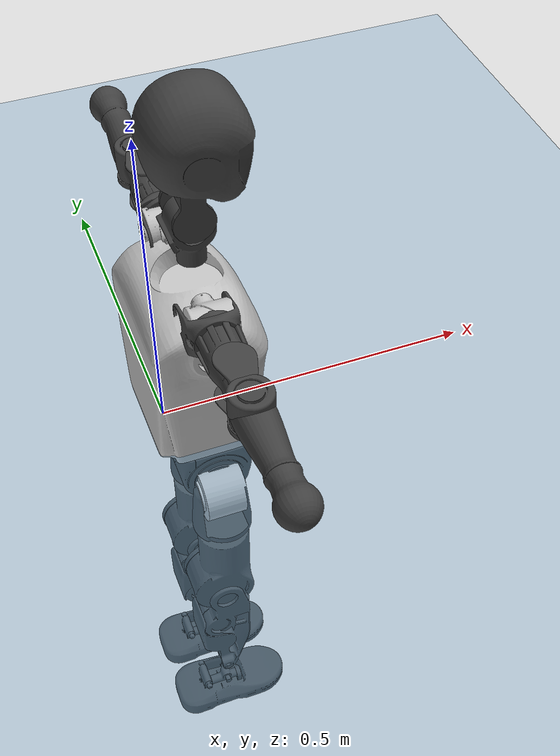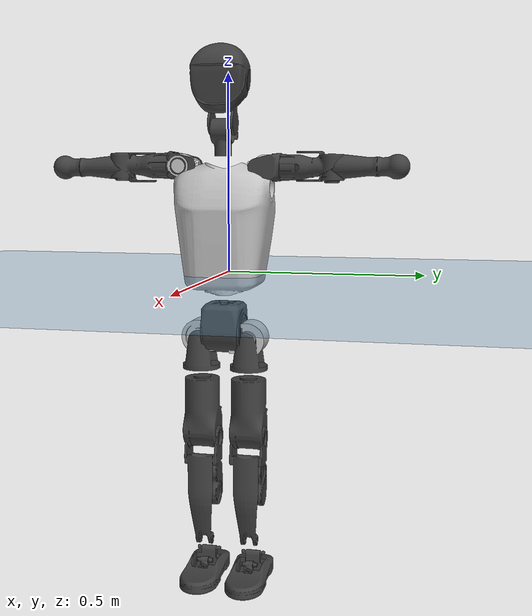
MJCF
<mujoco model="T1">
  <compiler angle="radian" assetdir="assets" balanceinertia="true" inertiafromgeom="false"/>

  <option timestep="0.005" density="1.2" viscosity="2e-05"/>

  <size nkey="1"/>

  <visual>
    <quality shadowsize="8192"/>
    <map shadowclip="0.5"/>
  </visual>

  <default>
    <default class="/">
      <joint armature="0.01" damping="0.01" frictionloss="0.1"/>
      <geom contype="0" conaffinity="0" group="1" solref="-1000 -80"/>
      <site size="0.01 0.005 0.005" group="5"/>
      <general forcelimited="true" biastype="affine" gainprm="25" biasprm="0 -25 -0.6"/>
      <default class="t1">
        <geom rgba="0.25 0.25 0.25 1"/>
        <default class="visual">
          <geom type="mesh" group="2"/>
        </default>
        <default class="collision">
          <geom group="3"/>
        </default>
        <default class="foot">
          <geom size="0.1115 0.05 0.015" type="box" condim="6" group="4" priority="1" solimp="0.015 1 0.015"/>
        </default>
        <default class="reward_collision_sphere">
          <geom group="5" rgba="1 0 0 1"/>
        </default>
      </default>
    </default>
  </default>

  <asset>
    <texture type="skybox" colorspace="auto" name="//unnamed_texture_0" builtin="gradient" rgb1="0.95 0.95 0.95" rgb2="0.95 0.95 0.95" width="100" height="600"/>
    <texture type="2d" colorspace="auto" name="texplane" builtin="checker" rgb1="0.345 0.575 0.748" rgb2="0.345 0.575 0.748" markrgb="1 1 1" width="512" height="512"/>
    <material name="MatPlane" class="/" texture="texplane" texuniform="true" texrepeat="2 2" specular="0.9"/>
    <mesh name="Trunk" class="/" file="Trunk.stl"/>
    <mesh name="H1" class="/" file="H1.stl"/>
    <mesh name="H2" class="/" file="H2.stl"/>
    <mesh name="AL1" class="/" file="AL1.stl"/>
    <mesh name="AL2" class="/" file="AL2.stl"/>
    <mesh name="AL3" class="/" file="AL3.stl"/>
    <mesh name="left_hand_link" class="/" file="left_hand_link.stl"/>
    <mesh name="AR1" class="/" file="AR1.stl"/>
    <mesh name="AR2" class="/" file="AR2.stl"/>
    <mesh name="AR3" class="/" file="AR3.stl"/>
    <mesh name="right_hand_link" class="/" file="right_hand_link.stl"/>
    <mesh name="Waist" class="/" file="Waist.stl"/>
    <mesh name="Hip_Pitch_Left" class="/" file="Hip_Pitch_Left.stl"/>
    <mesh name="Hip_Roll_Left" class="/" file="Hip_Roll_Left.stl"/>
    <mesh name="Hip_Yaw_Left" class="/" file="Hip_Yaw_Left.stl"/>
    <mesh name="Shank_Left" class="/" file="Shank_Left.stl"/>
    <mesh name="Ankle_Cross_Left" class="/" file="Ankle_Cross_Left.stl"/>
    <mesh name="left_foot_link" class="/" file="left_foot_link.stl"/>
    <mesh name="Hip_Pitch_Right" class="/" file="Hip_Pitch_Right.stl"/>
    <mesh name="Hip_Roll_Right" class="/" file="Hip_Roll_Right.stl"/>
    <mesh name="Hip_Yaw_Right" class="/" file="Hip_Yaw_Right.stl"/>
    <mesh name="Shank_Right" class="/" file="Shank_Right.stl"/>
    <mesh name="Ankle_Cross_Right" class="/" file="Ankle_Cross_Right.stl"/>
    <mesh name="right_foot_link" class="/" file="right_foot_link.stl"/>
  </asset>

  <worldbody>
    <geom name="floor" class="/" size="100 100 0.125" type="plane" group="0" material="MatPlane"/>
    <light name="toplight_shadow" class="/" pos="0 0 5" dir="0.0990148 0.0990148 -0.990148" type="directional" ambient="0.04 0.04 0.04" diffuse="0.55 0.55 0.55" specular="0.12 0.12 0.12"/>
    <light name="toplight_fill" class="/" pos="0 0 5" dir="0.0990148 0.0990148 -0.990148" type="directional" castshadow="false" ambient="0.04 0.04 0.04" diffuse="0.3 0.3 0.3" specular="0.08 0.08 0.08"/>
    <body name="trunk" childclass="t1" pos="-0.000388663 0.00246274 -0.00120054" quat="1 -0.000315095 -0.000128424 -0.000139211">
      <inertial pos="0.053944 -0.000270035 0.129722" quat="0.999959 -0.00130845 -0.00885748 -0.00104695" mass="9.92726" diaginertia="0.108345 0.00512362 0.143612"/>
      <joint name="//unnamed_joint_0" type="free" armature="0" damping="0" frictionloss="0"/>
      <geom name="//unnamed_geom_1" class="visual" rgba="0.76 0.76 0.76 1" mesh="Trunk"/>
      <geom name="//unnamed_geom_2" class="collision" size="0.0711401 0.0948534 0.14228" pos="0.0622886 0 0.146499" type="box"/>
      <geom name="//unnamed_geom_3" class="reward_collision_sphere" size="0.109081" pos="0.0622886 0 0.122082"/>
      <geom name="//unnamed_geom_4" class="reward_collision_sphere" size="0.014228" pos="0.0622886 0.0498641 0"/>
      <geom name="//unnamed_geom_5" class="reward_collision_sphere" size="0.014228" pos="0.0622886 -0.0498641 0"/>
      <geom name="//unnamed_geom_6" class="reward_collision_sphere" size="0.014228" pos="0.0622886 0.0627701 0.219748"/>
      <geom name="//unnamed_geom_7" class="reward_collision_sphere" size="0.014228" pos="0.0622886 -0.0627701 0.219748"/>
      <site name="imu" pos="-0.00116792 -0.0129633 -0.00916886" size="0.00948534"/>
      <camera name="track" pos="0 -1.17327 0" quat="0.707107 0.707107 0 0" mode="trackcom"/>
      <camera name="ego_camera" pos="0.126653 0 0.512746" quat="-0.5 -0.5 0.5 0.5"/>
      <body name="H1" pos="0.0651057 -0.00100353 0.294488" quat="0.999999 -0.000125465 0.000426422 0.00109356">
        <inertial pos="-0.000356606 -0.00407044 0.0718252" quat="0.770178 -0.00819272 -0.00138667 0.637774" mass="0.381365" diaginertia="0.000279228 1.53126e-05 0.000382326"/>
        <joint name="AAHead_yaw" pos="0 0 0" axis="0.011252 -0.00117861 0.999936" range="-1.53311 1.48619" armature="0.00911977" damping="0.00779815" frictionloss="0.0944358"/>
        <geom name="//unnamed_geom_8" class="visual" mesh="H1"/>
        <body name="H2" pos="-0.000694343 0.000720648 0.0811408" quat="0.999997 -6.5631e-05 -0.0009534 -0.00243384">
          <inertial pos="0.00596817 0.000180738 0.119241" quat="0.988388 0.106655 -0.0747959 -0.0782254" mass="0.539111" diaginertia="0.00244024 0.000128707 0.00485711"/>
          <joint name="Head_pitch" pos="0 0 0" axis="-0.00327914 -0.999986 -0.00415998" range="-1.17096 0.342849" armature="0.00957084" damping="0.0107738" frictionloss="0.0953779"/>
          <geom name="//unnamed_geom_9" class="visual" mesh="H2"/>
          <geom name="//unnamed_geom_10" class="collision" size="0.0758828" pos="0.0103814 0 0.134291"/>
          <geom name="//unnamed_geom_11" class="reward_collision_sphere" size="0.0853681" pos="0.0207629 0 0.122082"/>
        </body>
      </body>
      <body name="AL1" pos="0.060915 0.0623796 0.267668" quat="1 0.00032578 0.000584298 -0.000336196">
        <inertial pos="0.00138813 0.0257034 -0.000238837" quat="0.506841 0.485538 -0.500622 0.506698" mass="0.465281" diaginertia="0.00163967 9.08059e-05 0.000794886"/>
        <joint name="Left_Shoulder_Pitch" pos="0 0 0" axis="-0.00340385 0.999991 -0.00257939" range="-3.38243 1.20504" armature="0.0097213" damping="0.00256207" frictionloss="0.0877994"/>
        <geom name="//unnamed_geom_12" class="visual" rgba="0.76 0.76 0.76 1" mesh="AL1"/>
        <body name="AL2" pos="0.000929092 0.0274929 -7.36792e-06" quat="0.999999 -0.00138277 0.000450338 0.000574806">
          <inertial pos="-0.000684894 0.0230955 -2.89338e-05" quat="0.485923 0.510079 -0.491181 0.512288" mass="0.140888" diaginertia="0.000502364 2.43943e-05 0.000511329"/>
          <joint name="Left_Shoulder_Roll" pos="0 0 0" axis="-0.999976 0.00344243 0.00606759" range="-1.57709 1.69077" armature="0.00945294" damping="0.00117475" frictionloss="0.0852364"/>
          <geom name="//unnamed_geom_13" class="visual" mesh="AL2"/>
          <body name="AL3" pos="0.000335617 0.0337893 -0.000678657" quat="0.999999 0.000248687 0.00115258 0.00064216">
            <inertial pos="-0.00373975 0.0524635 0.000970545" quat="0.696521 0.717232 -0.00257591 -0.0207403" mass="0.818251" diaginertia="0.0141265 0.000779018 0.00160171"/>
            <joint name="Left_Elbow_Pitch" pos="0 0 0" axis="0.0057062 -0.999912 0.0120135" stiffness="0.00254269" range="-2.29283 2.1806" armature="0.00856706" damping="0.00950732" frictionloss="0.0736837"/>
            <geom name="//unnamed_geom_14" class="visual" mesh="AL3"/>
            <geom name="//unnamed_geom_15" class="collision" size="0.028456 0.0711401" pos="0 0.0293318 0" quat="0.707105 0.707108 0 0" type="cylinder"/>
            <geom name="//unnamed_geom_16" class="reward_collision_sphere" size="0.0341472"/>
            <body name="left_hand_link" pos="-0.000121141 0.0881101 0.00233668" quat="0.999998 -0.000642877 -0.00198832 -0.000288782">
              <inertial pos="-0.00269158 0.0634609 0.00140819" quat="0.707333 0.706769 0.0123938 -0.00190463" mass="0.272698" diaginertia="0.00926629 0.000549442 0.00059451"/>
              <joint name="Left_Elbow_Yaw" pos="0 0 0" axis="0.00291309 0.0104964 0.999941" stiffness="0.00772095" range="-2.46421 -0.0868551" armature="0.0102518" damping="0.0183771" frictionloss="0.0995907"/>
              <geom name="//unnamed_geom_17" class="visual" mesh="left_hand_link"/>
              <geom name="//unnamed_geom_18" class="collision" size="0.028456 0.0829968" pos="0 0.0762628 0" quat="0.707105 0.707108 0 0" type="cylinder"/>
              <geom name="//unnamed_geom_19" class="reward_collision_sphere" size="0.0474267"/>
              <geom name="//unnamed_geom_20" class="reward_collision_sphere" size="0.0331987" pos="0 0.0645301 0"/>
              <geom name="//unnamed_geom_21" class="reward_collision_sphere" size="0.0331987" pos="0 0.126127 0"/>
            </body>
          </body>
        </body>
      </body>
      <body name="AR1" pos="0.0567925 -0.0636596 0.270478" quat="1 -5.00692e-05 0.000430115 -6.6326e-05">
        <inertial pos="-0.00171863 -0.0240653 0.000212465" quat="0.495352 0.493755 -0.507818 0.502945" mass="0.455151" diaginertia="0.00163884 8.83246e-05 0.000787851"/>
        <joint name="Right_Shoulder_Pitch" pos="0 0 0" axis="0.0214034 -0.999722 0.00989476" range="-1.232 3.23931" armature="0.00837675" damping="0.0131639" frictionloss="0.113356"/>
        <geom name="//unnamed_geom_22" class="visual" rgba="0.76 0.76 0.76 1" mesh="AR1"/>
        <body name="AR2" pos="-0.00492885 -0.0243023 0.00224461" quat="1 0.000136402 2.6677e-06 -1.83506e-05">
          <inertial pos="0.00294707 -0.0230546 0.00303477" quat="0.52044 0.481271 -0.509787 0.487481" mass="0.124695" diaginertia="0.000467048 2.2655e-05 0.000451882"/>
          <joint name="Right_Shoulder_Roll" pos="0 0 0" axis="-0.999953 0.00704294 -0.00659488" stiffness="0.00793334" range="-1.75265 1.55167" armature="0.00834621" damping="0.0124601" frictionloss="0.0863147"/>
          <geom name="//unnamed_geom_23" class="visual" mesh="AR2"/>
          <body name="AR3" pos="0.00238246 -0.0331386 -0.00147997" quat="1 0.000213208 -0.000273996 -0.000247092">
            <inertial pos="0.000664501 -0.0514931 0.00111653" quat="0.70686 0.707311 0.000113607 0.00775371" mass="0.794934" diaginertia="0.0144324 0.000833293 0.0015808"/>
            <joint name="Right_Elbow_Pitch" pos="0 0 0" axis="0.00423369 0.999985 0.00345287" stiffness="0.0281607" range="-2.24214 2.31471" armature="0.00887107" damping="0" frictionloss="0.0987016"/>
            <geom name="//unnamed_geom_24" class="visual" mesh="AR3"/>
            <geom name="//unnamed_geom_25" class="collision" size="0.028456 0.0711401" pos="0 -0.0293318 0" quat="0.707105 0.707108 0 0" type="cylinder"/>
            <geom name="//unnamed_geom_26" class="reward_collision_sphere" size="0.0341472"/>
            <body name="right_hand_link" pos="0.000150101 -0.0870711 -0.00435275" quat="1 3.60899e-05 0.000162789 -0.000114541">
              <inertial pos="-0.00238767 -0.0646914 0.00495411" quat="0.706313 0.7079 0.000308827 -0.000162266" mass="0.294973" diaginertia="0.0100988 0.000548722 0.000581643"/>
              <joint name="Right_Elbow_Yaw" pos="0 0 0" axis="0.00123012 -0.00241434 0.999996" range="0.0395059 2.3901" armature="0.0084504" damping="0.00164385" frictionloss="0.0870661"/>
              <geom name="//unnamed_geom_27" class="visual" mesh="right_hand_link"/>
              <geom name="//unnamed_geom_28" class="collision" size="0.028456 0.0829968" pos="0 -0.0762628 0" quat="0.707105 0.707108 0 0" type="cylinder"/>
              <geom name="//unnamed_geom_29" class="reward_collision_sphere" size="0.0474267"/>
              <geom name="//unnamed_geom_30" class="reward_collision_sphere" size="0.0331987" pos="0 -0.0645301 0"/>
              <geom name="//unnamed_geom_31" class="reward_collision_sphere" size="0.0331987" pos="0 -0.126127 0"/>
            </body>
          </body>
        </body>
      </body>
      <body name="Waist" pos="0.0706656 0.00224591 -0.138303" quat="1 0.000294946 -0.000457244 -1.13371e-06">
        <inertial pos="0.00502495 0.00118992 0.0115327" quat="0.983795 1.88424e-05 -0.179281 0.00239316" mass="2.31389" diaginertia="0.00672207 0.000391223 0.013357"/>
        <joint name="Waist" pos="0 0 0" axis="5.56401e-05 0.000430622 1" range="-1.56771 1.56911" armature="0.0106801" damping="0" frictionloss="0.112475"/>
        <geom name="//unnamed_geom_32" class="visual" mesh="Waist"/>
        <body name="Hip_Pitch_Left" pos="0.00251911 0.0654566 -0.00181464" quat="1 -0.000808916 0.000167141 -7.22837e-05">
          <inertial pos="0.00171792 -0.0073097 -0.0215016" quat="0.976212 0.216241 0.0152979 0.00406136" mass="0.873828" diaginertia="0.00207494 9.42385e-05 0.00328807"/>
          <joint name="Left_Hip_Pitch" pos="0 0 0" axis="0.0139096 0.999871 -0.00801018" stiffness="0.0188397" range="-1.8518 1.61722" armature="0.00832402" damping="0.016551" frictionloss="0.104072"/>
          <geom name="//unnamed_geom_33" class="visual" rgba="0.76 0.76 0.76 1" mesh="Hip_Pitch_Left"/>
          <body name="Hip_Roll_Left" pos="-0.00293259 -0.00233645 -0.024195" quat="0.999997 0.00194448 -0.000994585 0.00137614">
            <inertial pos="0.00437935 0.00167413 -0.0631109" quat="0.704888 -0.0140605 0.0162213 0.708994" mass="0.343216" diaginertia="0.00222506 0.000111811 0.00139782"/>
            <joint name="Left_Hip_Roll" pos="0 0 0" axis="-0.999668 0.0163186 0.0199326" range="-1.54927 0.135892" armature="0.00818921" damping="0.0207701" frictionloss="0.0878006"/>
            <geom name="//unnamed_geom_34" class="visual" mesh="Hip_Roll_Left"/>
            <geom name="//unnamed_geom_35" class="reward_collision_sphere" size="0.0521694"/>
            <body name="Hip_Yaw_Left" pos="-0.0056205 -0.00164267 -0.102459" quat="0.999998 -0.00108343 -0.000910159 -0.0011089">
              <inertial pos="-0.00475323 -0.00312302 -0.109943" quat="0.703238 -0.0403463 -0.0350789 0.708941" mass="1.76748" diaginertia="0.0302345 0.00169524 0.00670174"/>
              <joint name="Left_Hip_Yaw" pos="0 0 0" axis="-0.00538242 0.000359244 -0.999985" range="-0.959302 1.08223" armature="0.0104466" damping="0" frictionloss="0.100949"/>
              <geom name="//unnamed_geom_36" class="visual" mesh="Hip_Yaw_Left"/>
              <geom name="//unnamed_geom_37" class="collision" size="0.0474267 0.0758828" type="cylinder"/>
              <body name="Shank_Left" pos="-0.0122184 -0.00138963 -0.159589" quat="1 0.000471922 1.75773e-05 -0.000361973">
                <inertial pos="-0.00812667 0.0026935 -0.150453" quat="0.996688 0.000582224 -0.0234471 0.0778658" mass="1.49719" diaginertia="0.0419107 0.00248261 0.00536055"/>
                <joint name="Left_Knee_Pitch" pos="0 0 0" axis="0.00272777 0.999982 -0.00541764" range="0.0130462 2.3727" armature="0.00931964" damping="0.00906624" frictionloss="0.103956"/>
                <geom name="//unnamed_geom_38" class="visual" mesh="Shank_Left"/>
                <geom name="//unnamed_geom_39" class="collision" size="0.0474267 0.0711401" pos="0 0 -0.146499" type="cylinder"/>
                <geom name="//unnamed_geom_40" class="reward_collision_sphere" size="0.0616547"/>
                <body name="Ankle_Cross_Left" pos="0.000846601 0.000932434 -0.345849" quat="1 0.000163973 -0.000368818 0.000211251">
                  <inertial pos="-0.00463399 0.00236287 -0.0106779" quat="0.443684 0.551017 0.550971 0.442669" mass="0.0583186" diaginertia="3.4596e-05 1.69744e-06 3.00095e-05"/>
                  <joint name="Left_Ankle_Pitch" pos="0 0 0" axis="3.62636e-05 0.999972 -0.00743767" range="-0.918045 0.394425" armature="0.0099267" damping="0.0130509" frictionloss="0.0982234"/>
                  <geom name="//unnamed_geom_41" class="visual" mesh="Ankle_Cross_Left"/>
                  <body name="left_foot_link" pos="0.000648596 0.00104757 -0.0148685" quat="0.999999 0.000577378 -0.000250603 -0.000910453">
                    <inertial pos="0.00177659 -0.00158556 -0.0110182" quat="4.46535e-06 0.620695 1.37257e-05 0.784052" mass="0.627705" diaginertia="0.00312875 0.000172367 0.00621283"/>
                    <joint name="Left_Ankle_Roll" pos="0 0 0" axis="-0.999998 0.00144692 -0.00109177" stiffness="0.00559635" range="-0.486959 0.365647" armature="0.00745856" damping="0.00965414" frictionloss="0.104944"/>
                    <geom name="//unnamed_geom_42" class="visual" mesh="left_foot_link"/>
                    <geom name="left_foot" class="foot" size="0.0947858 0.0527915 0.013127" pos="0.0103814 0 -0.0183124"/>
                    <geom name="//unnamed_geom_44" class="reward_collision_sphere" size="0.0493238" pos="0.0103814 0 -0.0183124"/>
                    <geom name="//unnamed_geom_45" class="reward_collision_sphere" size="0.028456" pos="0.0986236 -0.0134926 -0.0183124"/>
                    <geom name="//unnamed_geom_46" class="reward_collision_sphere" size="0.028456" pos="-0.07267 -0.0134926 -0.0183124"/>
                    <site name="left_foot" class="foot" pos="0.0103814 0 -0.0183124" size="0.00948534"/>
                  </body>
                </body>
              </body>
            </body>
          </body>
        </body>
        <body name="Hip_Pitch_Right" pos="-0.00213483 -0.0606916 0.00157393" quat="0.999999 4.05718e-05 -0.00104564 -0.000964738">
          <inertial pos="0.00323138 0.0064351 -0.0220248" quat="0.972911 -0.230608 0.0147275 -0.0069367" mass="0.837761" diaginertia="0.0021567 0.000100916 0.00334076"/>
          <joint name="Right_Hip_Pitch" pos="0 0 0" axis="-0.00596717 -0.999908 -0.0121907" range="-1.51938 1.78652" armature="0.00687739" damping="0.0118099" frictionloss="0.0891689"/>
          <geom name="//unnamed_geom_47" class="visual" rgba="0.76 0.76 0.76 1" mesh="Hip_Pitch_Right"/>
          <body name="Hip_Roll_Right" pos="0.00159533 -0.00035813 -0.0277781" quat="0.999999 0.000397261 0.000335102 0.00118109">
            <inertial pos="0.00130747 0.00376835 -0.0645554" quat="0.699935 -0.00299832 -0.0165615 0.714008" mass="0.361501" diaginertia="0.00230419 0.000113186 0.0014977"/>
            <joint name="Right_Hip_Roll" pos="0 0 0" axis="-0.999798 0.00433993 -0.0196471" range="-0.23335 1.5747" armature="0.00962279" damping="0.0195388" frictionloss="0.101158"/>
            <geom name="//unnamed_geom_48" class="visual" mesh="Hip_Roll_Right"/>
            <geom name="//unnamed_geom_49" class="reward_collision_sphere" size="0.0521694"/>
            <body name="Hip_Yaw_Right" pos="-0.00161332 0.000797778 -0.10219" quat="1 -0.000425331 -8.08235e-05 -0.000316846">
              <inertial pos="-0.007992 0.00501344 -0.107466" quat="0.7094 -0.0389685 -0.0323466 0.702984" mass="1.99094" diaginertia="0.0334987 0.00189775 0.00727598"/>
              <joint name="Right_Hip_Yaw" pos="0 0 0" axis="-4.67001e-05 0.00314947 -0.999995" range="-1.01993 0.963049" armature="0.00838164" damping="0.0184632" frictionloss="0.0947561"/>
              <geom name="//unnamed_geom_50" class="visual" mesh="Hip_Yaw_Right"/>
              <geom name="//unnamed_geom_51" class="collision" size="0.0474267 0.0758828" type="cylinder"/>
              <body name="Shank_Right" pos="-0.012055 0.00105213 -0.16258" quat="1 0.000386992 -0.000334715 -0.000157059">
                <inertial pos="-0.00587363 0.000707352 -0.151377" quat="0.999239 0.0113595 -0.0254378 -0.0273155" mass="1.55904" diaginertia="0.0463688 0.00241639 0.00543724"/>
                <joint name="Right_Knee_Pitch" pos="0 0 0" axis="-0.0151733 -0.99975 0.0164519" stiffness="0.01376" range="-2.31817 0.0297742" armature="0.00965751" damping="0.01666" frictionloss="0.0957553"/>
                <geom name="//unnamed_geom_52" class="visual" mesh="Shank_Right"/>
                <geom name="//unnamed_geom_53" class="collision" size="0.0474267 0.0711401" pos="0 0 -0.146499" type="cylinder"/>
                <geom name="//unnamed_geom_54" class="reward_collision_sphere" size="0.0616547"/>
                <body name="Ankle_Cross_Right" pos="-0.00257732 -0.00120471 -0.341442" quat="1 0.000706528 -0.000484377 0.000280965">
                  <inertial pos="-0.00641765 -0.000185737 -0.00610589" quat="0.459232 0.546263 0.540604 0.445477" mass="0.064503" diaginertia="3.84307e-05 1.81067e-06 3.3446e-05"/>
                  <joint name="Right_Ankle_Pitch" pos="0 0 0" axis="0.00710753 -0.999946 -0.00753984" stiffness="0.00985747" range="-0.362129 0.908695" armature="0.00913155" damping="0.0104996" frictionloss="0.102623"/>
                  <geom name="//unnamed_geom_55" class="visual" mesh="Ankle_Cross_Right"/>
                  <body name="right_foot_link" pos="-0.00153987 4.48498e-05 -0.0145544" quat="1 -0.000140661 -0.000749392 -0.000522907">
                    <inertial pos="0.00501026 0.000726236 -0.0118642" quat="0.00274422 0.620795 -0.00180276 0.783966" mass="0.582591" diaginertia="0.00316671 0.000160062 0.00578718"/>
                    <joint name="Right_Ankle_Roll" pos="0 0 0" axis="-0.999999 4.82292e-05 0.00115713" range="-0.488845 0.466922" armature="0.0100828" damping="0" frictionloss="0.0961208"/>
                    <geom name="//unnamed_geom_56" class="visual" mesh="right_foot_link"/>
                    <geom name="right_foot" class="foot" size="0.0995102 0.0467705 0.014581" pos="0.0103814 0 -0.0183124"/>
                    <geom name="//unnamed_geom_58" class="reward_collision_sphere" size="0.0379414"/>
                    <geom name="//unnamed_geom_59" class="reward_collision_sphere" size="0.028456" pos="0.0103814 0 -0.0183124"/>
                    <geom name="//unnamed_geom_60" class="reward_collision_sphere" size="0.028456" pos="0.0986236 0.0134926 -0.0183124"/>
                    <geom name="//unnamed_geom_61" class="reward_collision_sphere" size="0.028456" pos="-0.07267 0.0134926 -0.0183124"/>
                    <site name="right_foot" class="foot" pos="0.0103814 0 -0.0183124" size="0.00948534"/>
                  </body>
                </body>
              </body>
            </body>
          </body>
        </body>
      </body>
    </body>
  </worldbody>

  <contact>
    <pair class="/" geom1="floor" geom2="left_foot" name="//unnamed_contact_0"/>
    <pair class="/" geom1="floor" geom2="right_foot" name="//unnamed_contact_1"/>
  </contact>

  <actuator>
    <general name="AAHead_yaw" class="/" joint="AAHead_yaw" forcerange="-6.53213 6.53213" gainprm="24.6805" biasprm="0 -24.6805 -0.55797"/>
    <general name="Head_pitch" class="/" joint="Head_pitch" forcerange="-6.43025 6.43025" gainprm="24.6805" biasprm="0 -24.6805 -0.55797"/>
    <general name="Left_Shoulder_Pitch" class="/" joint="Left_Shoulder_Pitch" forcerange="-15.7716 15.7716" gainprm="24.6805" biasprm="0 -24.6805 -0.55797"/>
    <general name="Left_Shoulder_Roll" class="/" joint="Left_Shoulder_Roll" forcerange="-18.1399 18.1399" gainprm="24.6805" biasprm="0 -24.6805 -0.55797"/>
    <general name="Left_Elbow_Pitch" class="/" joint="Left_Elbow_Pitch" forcerange="-14.9775 14.9775" gainprm="24.6805" biasprm="0 -24.6805 -0.55797"/>
    <general name="Left_Elbow_Yaw" class="/" joint="Left_Elbow_Yaw" forcerange="-17.2089 17.2089" gainprm="24.6805" biasprm="0 -24.6805 -0.55797"/>
    <general name="Right_Shoulder_Pitch" class="/" joint="Right_Shoulder_Pitch" forcerange="-19.8197 19.8197" gainprm="24.6805" biasprm="0 -24.6805 -0.55797"/>
    <general name="Right_Shoulder_Roll" class="/" joint="Right_Shoulder_Roll" forcerange="-17.0528 17.0528" gainprm="24.6805" biasprm="0 -24.6805 -0.55797"/>
    <general name="Right_Elbow_Pitch" class="/" joint="Right_Elbow_Pitch" forcerange="-14.7766 14.7766" gainprm="24.6805" biasprm="0 -24.6805 -0.55797"/>
    <general name="Right_Elbow_Yaw" class="/" joint="Right_Elbow_Yaw" forcerange="-18.2474 18.2474" gainprm="24.6805" biasprm="0 -24.6805 -0.55797"/>
    <general name="Waist" class="/" joint="Waist" forcerange="-26.2493 26.2493" gainprm="24.6805" biasprm="0 -24.6805 -0.55797"/>
    <general name="Left_Hip_Pitch" class="/" joint="Left_Hip_Pitch" forcerange="-39.2878 39.2878" gainprm="24.6805" biasprm="0 -24.6805 -0.55797"/>
    <general name="Left_Hip_Roll" class="/" joint="Left_Hip_Roll" forcerange="-25.3729 25.3729" gainprm="24.6805" biasprm="0 -24.6805 -0.55797"/>
    <general name="Left_Hip_Yaw" class="/" joint="Left_Hip_Yaw" forcerange="-33.6273 33.6273" gainprm="24.6805" biasprm="0 -24.6805 -0.55797"/>
    <general name="Left_Knee_Pitch" class="/" joint="Left_Knee_Pitch" forcerange="-54.0179 54.0179" gainprm="24.6805" biasprm="0 -24.6805 -0.55797"/>
    <general name="Left_Ankle_Pitch" class="/" joint="Left_Ankle_Pitch" forcerange="-23.0964 23.0964" gainprm="24.6805" biasprm="0 -24.6805 -0.55797"/>
    <general name="Left_Ankle_Roll" class="/" joint="Left_Ankle_Roll" forcerange="-13.602 13.602" gainprm="24.6805" biasprm="0 -24.6805 -0.55797"/>
    <general name="Right_Hip_Pitch" class="/" joint="Right_Hip_Pitch" forcerange="-42.7304 42.7304" gainprm="24.6805" biasprm="0 -24.6805 -0.55797"/>
    <general name="Right_Hip_Roll" class="/" joint="Right_Hip_Roll" forcerange="-27.767 27.767" gainprm="24.6805" biasprm="0 -24.6805 -0.55797"/>
    <general name="Right_Hip_Yaw" class="/" joint="Right_Hip_Yaw" forcerange="-27.7523 27.7523" gainprm="24.6805" biasprm="0 -24.6805 -0.55797"/>
    <general name="Right_Knee_Pitch" class="/" joint="Right_Knee_Pitch" forcerange="-52.1155 52.1155" gainprm="24.6805" biasprm="0 -24.6805 -0.55797"/>
    <general name="Right_Ankle_Pitch" class="/" joint="Right_Ankle_Pitch" forcerange="-19.2243 19.2243" gainprm="24.6805" biasprm="0 -24.6805 -0.55797"/>
    <general name="Right_Ankle_Roll" class="/" joint="Right_Ankle_Roll" forcerange="-16.1804 16.1804" gainprm="24.6805" biasprm="0 -24.6805 -0.55797"/>
  </actuator>

  <sensor>
    <gyro site="imu" name="imu_angular_velocity"/>
    <velocimeter site="imu" name="imu_linear_velocity"/>
    <framelinvel objtype="site" objname="left_foot" name="left_foot_global_linear_velocity"/>
    <framelinvel objtype="site" objname="right_foot" name="right_foot_global_linear_velocity"/>
  </sensor>

  <keyframe>
    <key name="home" qpos="0 0 0.6385 1 0 0 0 0 0 0 1.4 0 -0.4 0 -1.4 0 0.4 0 -0.4 0 0 0.8 -0.4 0 0.4 0 0 -0.8 0.4 0"/>
  </keyframe>
</mujoco>
